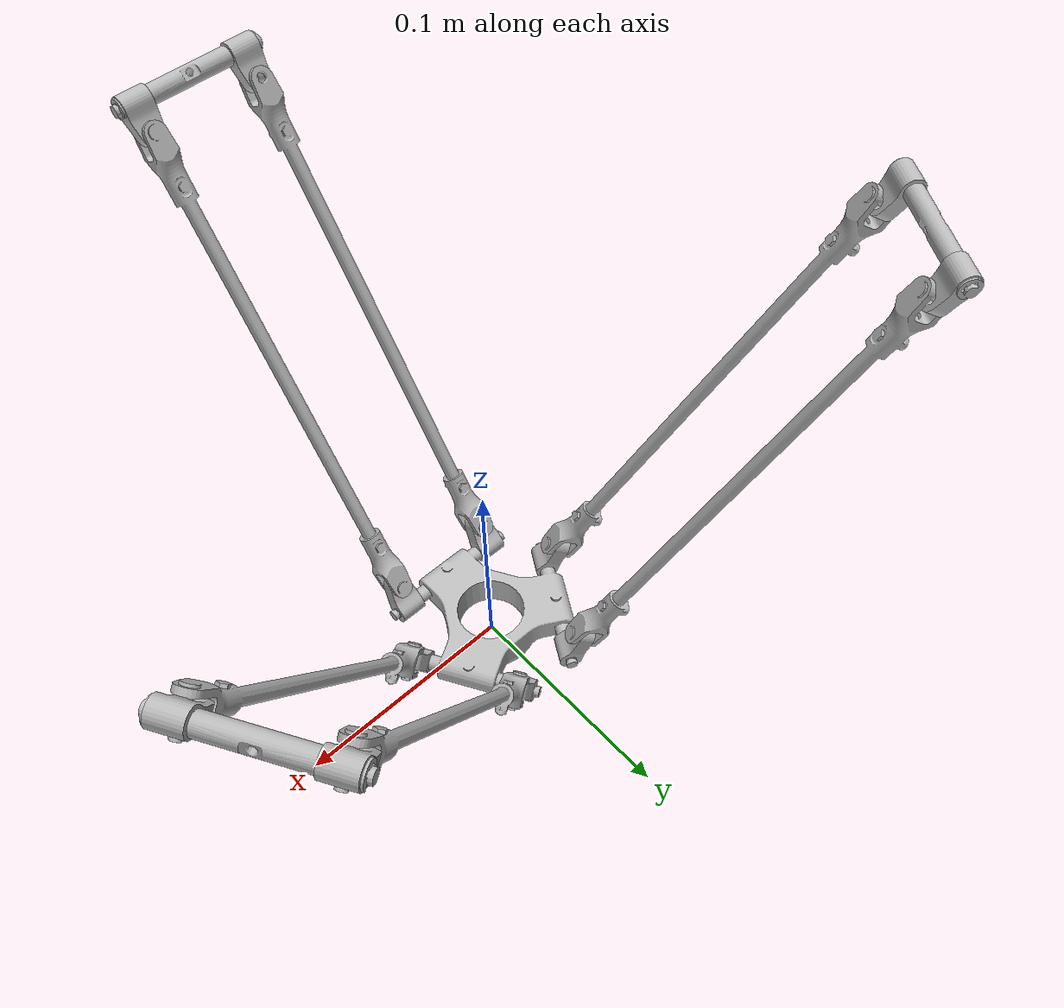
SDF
<sdf version='1.7'>
  <model name='DeltaManipulator_low'>
    <link name='low_base_link'>
      <inertial>
        <pose>0 -0 0.009282 0 -0 0</pose>
        <mass>0.0277053</mass>
        <inertia>
          <ixx>7.21837e-06</ixx>
          <ixy>8.45348e-15</ixy>
          <ixz>4.72158e-13</ixz>
          <iyy>7.21837e-06</iyy>
          <iyz>2.82195e-12</iyz>
          <izz>1.36261e-05</izz>
        </inertia>
      </inertial>
      <collision name='low_base_link_collision'>
        <pose>0 0 0 0 -0 0</pose>
        <geometry>
          <mesh>
            <scale>1 1 1</scale>
            <uri>model://DeltaManipulator_low/meshes/low_base_link.STL</uri>
          </mesh>
        </geometry>
      </collision>
      <visual name='low_base_link_visual'>
        <pose>0 0 0 0 -0 0</pose>
        <geometry>
          <mesh>
            <scale>1 1 1</scale>
            <uri>model://DeltaManipulator_low/meshes/low_base_link.STL</uri>
          </mesh>
        </geometry>
      </visual>
    </link>
    <joint name='low_base_link_joint_con131' type='revolute'>
      <pose relative_to='low_base_link'>-0.0324 -0.03 0.01 0 -0 0</pose>
      <parent>low_base_link</parent>
      <child>con131</child>
      <axis>
        <xyz>1 0 0</xyz>
        <limit>
          <effort>0</effort>
          <velocity>0</velocity>
          <lower>-1e+16</lower>
          <upper>1e+16</upper>
        </limit>
        <dynamics>
          <spring_reference>0</spring_reference>
          <spring_stiffness>0</spring_stiffness>
        </dynamics>
      </axis>
    </joint>
    <link name='con131'>
      <pose relative_to='low_base_link_joint_con131'>0 0 0 0 -0 0</pose>
      <inertial>
        <pose>0.0084 -0.002671 0.004067 0 -0 0</pose>
        <mass>0.00144663</mass>
        <inertia>
          <ixx>5.69218e-08</ixx>
          <ixy>2.55914e-21</ixy>
          <ixz>-4.05166e-21</ixz>
          <iyy>5.24618e-08</iyy>
          <iyz>1.79112e-08</iyz>
          <izz>3.69464e-08</izz>
        </inertia>
      </inertial>
      <collision name='con131_collision'>
        <pose>0 0 0 0 -0 0</pose>
        <geometry>
          <mesh>
            <scale>1 1 1</scale>
            <uri>model://DeltaManipulator_low/meshes/con131.STL</uri>
          </mesh>
        </geometry>
      </collision>
      <visual name='con131_visual'>
        <pose>0 0 0 0 -0 0</pose>
        <geometry>
          <mesh>
            <scale>1 1 1</scale>
            <uri>model://DeltaManipulator_low/meshes/con131.STL</uri>
          </mesh>
        </geometry>
      </visual>
    </link>
    <joint name='con111_joint_con121' type='revolute'>
      <pose relative_to='con131'>0.0084 -0.013859 0.005255 -1.5708 0.581034 -1.5708</pose>
      <parent>con131</parent>
      <child>con121</child>
      <axis>
        <xyz>-1 0 0</xyz>
        <limit>
          <lower>-1e+16</lower>
          <upper>1e+16</upper>
        </limit>
        <dynamics>
          <spring_reference>0</spring_reference>
          <spring_stiffness>0</spring_stiffness>
        </dynamics>
      </axis>
    </joint>
    <link name='con121'>
      <pose relative_to='con111_joint_con121'>0 0 0 0 -0 0</pose>
      <inertial>
        <pose>-0.008563 -0.105003 0 0 -0 0</pose>
        <mass>0.00783743</mass>
        <inertia>
          <ixx>1.33284e-05</ixx>
          <ixy>-9.91013e-13</ixy>
          <ixz>-1.33622e-13</ixz>
          <iyy>1.11815e-07</iyy>
          <iyz>1.13821e-13</iyz>
          <izz>1.33597e-05</izz>
        </inertia>
      </inertial>
      <collision name='con121_collision'>
        <pose>0 0 0 0 -0 0</pose>
        <geometry>
          <mesh>
            <scale>1 1 1</scale>
            <uri>model://DeltaManipulator_low/meshes/con121.STL</uri>
          </mesh>
        </geometry>
      </collision>
      <visual name='con121_visual'>
        <pose>0 0 0 0 -0 0</pose>
        <geometry>
          <mesh>
            <scale>1 1 1</scale>
            <uri>model://DeltaManipulator_low/meshes/con121.STL</uri>
          </mesh>
        </geometry>
      </visual>
    </link>
    <joint name='con121_joint_con111' type='revolute'>
      <pose relative_to='con121'>0 -0.216 0 0 -0 0</pose>
      <parent>con121</parent>
      <child>con111</child>
      <axis>
        <xyz>-1 0 0</xyz>
        <limit>
          <lower>-1e+16</lower>
          <upper>1e+16</upper>
        </limit>
        <dynamics>
          <spring_reference>0</spring_reference>
          <spring_stiffness>0</spring_stiffness>
        </dynamics>
      </axis>
    </joint>
    <link name='con111'>
      <pose relative_to='con121_joint_con111'>0 0 0 0 -0 0</pose>
      <inertial>
        <pose>-0.0087 -0.007134 0 0 -0 0</pose>
        <mass>0.00144663</mass>
        <inertia>
          <ixx>6.42231e-08</ixx>
          <ixy>-3.25636e-20</ixy>
          <ixz>3.8648e-23</ixz>
          <iyy>2.51851e-08</iyy>
          <iyz>-4.04036e-21</iyz>
          <izz>5.69218e-08</izz>
        </inertia>
      </inertial>
      <collision name='con111_collision'>
        <pose>0 0 0 0 -0 0</pose>
        <geometry>
          <mesh>
            <scale>1 1 1</scale>
            <uri>model://DeltaManipulator_low/meshes/con111.STL</uri>
          </mesh>
        </geometry>
      </collision>
      <visual name='con111_visual'>
        <pose>0 0 0 0 -0 0</pose>
        <geometry>
          <mesh>
            <scale>1 1 1</scale>
            <uri>model://DeltaManipulator_low/meshes/con111.STL</uri>
          </mesh>
        </geometry>
      </visual>
    </link>
    <joint name='con111_joint_con101' type='revolute'>
      <pose relative_to='con111'>-0.0087 -0.012 -0.0084 2.15183 -1.5708 0</pose>
      <parent>con111</parent>
      <child>con101</child>
      <axis>
        <xyz>-1 0 0</xyz>
        <limit>
          <lower>-1e+16</lower>
          <upper>1e+16</upper>
        </limit>
        <dynamics>
          <spring_reference>0</spring_reference>
          <spring_stiffness>0</spring_stiffness>
        </dynamics>
      </axis>
    </joint>
    <joint name='con112_joint_con101' type='revolute'>
      <pose relative_to='con112'>-0.0087 -0.012 -0.0084 2.15183 -1.5708 0</pose>
      <parent>con112</parent>
      <child>con101</child>
      <axis>
        <xyz>-1 0 0</xyz>
        <limit>
          <lower>-1e+16</lower>
          <upper>1e+16</upper>
        </limit>
        <dynamics>
          <spring_reference>0</spring_reference>
          <spring_stiffness>0</spring_stiffness>
        </dynamics>
      </axis>
    </joint>
    <link name='con101'>
      <pose relative_to='con111_joint_con101'>0 0 0 0 -0 0</pose>
      <inertial>
        <pose>0.0324 9e-06 1.5e-05 0 -0 0</pose>
        <mass>0.00233439</mass>
        <inertia>
          <ixx>1.61756e-08</ixx>
          <ixy>-7.50049e-21</ixy>
          <ixz>-7.13217e-23</ixz>
          <iyy>5.59999e-07</iyy>
          <iyz>-8.76657e-11</iyz>
          <izz>5.59708e-07</izz>
        </inertia>
      </inertial>
      <collision name='con101_collision'>
        <pose>0 0 0 0 -0 0</pose>
        <geometry>
          <mesh>
            <scale>1 1 1</scale>
            <uri>model://DeltaManipulator_low/meshes/con101.STL</uri>
          </mesh>
        </geometry>
      </collision>
      <visual name='con101_visual'>
        <pose>0 0 0 0 -0 0</pose>
        <geometry>
          <mesh>
            <scale>1 1 1</scale>
            <uri>model://DeltaManipulator_low/meshes/con101.STL</uri>
          </mesh>
        </geometry>
      </visual>
    </link>
    <joint name='low_base_link_joint_con132' type='revolute'>
      <pose relative_to='low_base_link'>0.0324 -0.03 0.01 0 -0 0</pose>
      <parent>low_base_link</parent>
      <child>con132</child>
      <axis>
        <xyz>1 0 0</xyz>
        <limit>
          <effort>0</effort>
          <velocity>0</velocity>
          <lower>-1e+16</lower>
          <upper>1e+16</upper>
        </limit>
        <dynamics>
          <spring_reference>0</spring_reference>
          <spring_stiffness>0</spring_stiffness>
        </dynamics>
      </axis>
    </joint>
    <link name='con132'>
      <pose relative_to='low_base_link_joint_con132'>0 0 0 0 -0 0</pose>
      <inertial>
        <pose>-0.0084 -0.002671 0.004067 0 -0 0</pose>
        <mass>0.00144663</mass>
        <inertia>
          <ixx>5.69218e-08</ixx>
          <ixy>2.56603e-21</ixy>
          <ixz>-4.05505e-21</ixz>
          <iyy>5.24618e-08</iyy>
          <iyz>1.79112e-08</iyz>
          <izz>3.69464e-08</izz>
        </inertia>
      </inertial>
      <collision name='con132_collision'>
        <pose>0 0 0 0 -0 0</pose>
        <geometry>
          <mesh>
            <scale>1 1 1</scale>
            <uri>model://DeltaManipulator_low/meshes/con132.STL</uri>
          </mesh>
        </geometry>
      </collision>
      <visual name='con132_visual'>
        <pose>0 0 0 0 -0 0</pose>
        <geometry>
          <mesh>
            <scale>1 1 1</scale>
            <uri>model://DeltaManipulator_low/meshes/con132.STL</uri>
          </mesh>
        </geometry>
      </visual>
    </link>
    <joint name='con112_joint_con122' type='revolute'>
      <pose relative_to='con132'>-0.0084 -0.013859 0.005255 -1.5708 0.581034 -1.5708</pose>
      <parent>con132</parent>
      <child>con122</child>
      <axis>
        <xyz>-1 0 0</xyz>
        <limit>
          <lower>-1e+16</lower>
          <upper>1e+16</upper>
        </limit>
        <dynamics>
          <spring_reference>0</spring_reference>
          <spring_stiffness>0</spring_stiffness>
        </dynamics>
      </axis>
    </joint>
    <link name='con122'>
      <pose relative_to='con112_joint_con122'>0 0 0 0 -0 0</pose>
      <inertial>
        <pose>-0.008567 -0.107998 0 0 -0 0</pose>
        <mass>0.00805476</mass>
        <inertia>
          <ixx>1.33289e-05</ixx>
          <ixy>-9.91013e-13</ixy>
          <ixz>-1.33622e-13</ixz>
          <iyy>1.1727e-07</iyy>
          <iyz>1.13822e-13</iyz>
          <izz>1.33651e-05</izz>
        </inertia>
      </inertial>
      <collision name='con122_collision'>
        <pose>0 0 0 0 -0 0</pose>
        <geometry>
          <mesh>
            <scale>1 1 1</scale>
            <uri>model://DeltaManipulator_low/meshes/con122.STL</uri>
          </mesh>
        </geometry>
      </collision>
      <visual name='con122_visual'>
        <pose>0 0 0 0 -0 0</pose>
        <geometry>
          <mesh>
            <scale>1 1 1</scale>
            <uri>model://DeltaManipulator_low/meshes/con122.STL</uri>
          </mesh>
        </geometry>
      </visual>
    </link>
    <joint name='con122_joint_con112' type='revolute'>
      <pose relative_to='con122'>0 -0.216 0 0 -0 0</pose>
      <parent>con122</parent>
      <child>con112</child>
      <axis>
        <xyz>-1 0 0</xyz>
        <limit>
          <lower>-1e+16</lower>
          <upper>1e+16</upper>
        </limit>
        <dynamics>
          <spring_reference>0</spring_reference>
          <spring_stiffness>0</spring_stiffness>
        </dynamics>
      </axis>
    </joint>
    <link name='con112'>
      <pose relative_to='con122_joint_con112'>0 0 0 0 -0 0</pose>
      <inertial>
        <pose>-0.0087 -0.007134 0 0 -0 0</pose>
        <mass>0.00144663</mass>
        <inertia>
          <ixx>6.42231e-08</ixx>
          <ixy>-3.26223e-20</ixy>
          <ixz>3.04521e-23</ixz>
          <iyy>2.51851e-08</iyy>
          <iyz>-4.03079e-21</iyz>
          <izz>5.69218e-08</izz>
        </inertia>
      </inertial>
      <collision name='con112_collision'>
        <pose>0 0 0 0 -0 0</pose>
        <geometry>
          <mesh>
            <scale>1 1 1</scale>
            <uri>model://DeltaManipulator_low/meshes/con112.STL</uri>
          </mesh>
        </geometry>
      </collision>
      <visual name='con112_visual'>
        <pose>0 0 0 0 -0 0</pose>
        <geometry>
          <mesh>
            <scale>1 1 1</scale>
            <uri>model://DeltaManipulator_low/meshes/con112.STL</uri>
          </mesh>
        </geometry>
      </visual>
    </link>
    <joint name='low_base_link_joint_con231' type='revolute'>
      <pose relative_to='low_base_link'>0.042181 -0.013059 0.01 0 0 -1.0472</pose>
      <parent>low_base_link</parent>
      <child>con231</child>
      <axis>
        <xyz>-1 0 0</xyz>
        <limit>
          <effort>0</effort>
          <velocity>0</velocity>
          <lower>-1e+16</lower>
          <upper>1e+16</upper>
        </limit>
        <dynamics>
          <spring_reference>0</spring_reference>
          <spring_stiffness>0</spring_stiffness>
        </dynamics>
      </axis>
    </joint>
    <link name='con231'>
      <pose relative_to='low_base_link_joint_con231'>0 0 0 0 -0 0</pose>
      <inertial>
        <pose>-0.0084 0.002671 0.004067 0 -0 0</pose>
        <mass>0.00144663</mass>
        <inertia>
          <ixx>5.69218e-08</ixx>
          <ixy>8.54296e-19</ixy>
          <ixz>2.07455e-18</ixz>
          <iyy>5.24618e-08</iyy>
          <iyz>-1.79112e-08</iyz>
          <izz>3.69464e-08</izz>
        </inertia>
      </inertial>
      <collision name='con231_collision'>
        <pose>0 0 0 0 -0 0</pose>
        <geometry>
          <mesh>
            <scale>1 1 1</scale>
            <uri>model://DeltaManipulator_low/meshes/con231.STL</uri>
          </mesh>
        </geometry>
      </collision>
      <visual name='con231_visual'>
        <pose>0 0 0 0 -0 0</pose>
        <geometry>
          <mesh>
            <scale>1 1 1</scale>
            <uri>model://DeltaManipulator_low/meshes/con231.STL</uri>
          </mesh>
        </geometry>
      </visual>
    </link>
    <joint name='con211_joint_con221' type='revolute'>
      <pose relative_to='con231'>-0.0084 0.013859 0.005255 0.306889 0.581034 1.5708</pose>
      <parent>con231</parent>
      <child>con221</child>
      <axis>
        <xyz>-1 0 0</xyz>
        <limit>
          <lower>-1e+16</lower>
          <upper>1e+16</upper>
        </limit>
        <dynamics>
          <spring_reference>0</spring_reference>
          <spring_stiffness>0</spring_stiffness>
        </dynamics>
      </axis>
    </joint>
    <link name='con221'>
      <pose relative_to='con211_joint_con221'>0 0 0 0 -0 0</pose>
      <inertial>
        <pose>-0.008567 0.032625 0.102952 0 -0 0</pose>
        <mass>0.00805476</mass>
        <inertia>
          <ixx>1.33289e-05</ixx>
          <ixy>1.72633e-13</ixy>
          <ixz>9.86337e-13</ixz>
          <iyy>1.21561e-05</iyy>
          <iyz>-3.81512e-06</iyz>
          <izz>1.32629e-06</izz>
        </inertia>
      </inertial>
      <collision name='con221_collision'>
        <pose>0 0 0 0 -0 0</pose>
        <geometry>
          <mesh>
            <scale>1 1 1</scale>
            <uri>model://DeltaManipulator_low/meshes/con221.STL</uri>
          </mesh>
        </geometry>
      </collision>
      <visual name='con221_visual'>
        <pose>0 0 0 0 -0 0</pose>
        <geometry>
          <mesh>
            <scale>1 1 1</scale>
            <uri>model://DeltaManipulator_low/meshes/con221.STL</uri>
          </mesh>
        </geometry>
      </visual>
    </link>
    <joint name='con221_joint_con211' type='revolute'>
      <pose relative_to='con221'>0 0.065252 0.205908 0 -0 0</pose>
      <parent>con221</parent>
      <child>con211</child>
      <axis>
        <xyz>-1 0 0</xyz>
        <limit>
          <lower>-1e+16</lower>
          <upper>1e+16</upper>
        </limit>
        <dynamics>
          <spring_reference>0</spring_reference>
          <spring_stiffness>0</spring_stiffness>
        </dynamics>
      </axis>
    </joint>
    <link name='con211'>
      <pose relative_to='con221_joint_con211'>0 0 0 0 -0 0</pose>
      <inertial>
        <pose>-0.0087 0.002155 0.006801 0 -0 0</pose>
        <mass>0.00144663</mass>
        <inertia>
          <ixx>6.42231e-08</ixx>
          <ixy>8.57311e-19</ixy>
          <ixz>1.29525e-18</ixz>
          <iyy>5.40255e-08</iyy>
          <iyz>-9.13954e-09</iyz>
          <izz>2.80814e-08</izz>
        </inertia>
      </inertial>
      <collision name='con211_collision'>
        <pose>0 0 0 0 -0 0</pose>
        <geometry>
          <mesh>
            <scale>1 1 1</scale>
            <uri>model://DeltaManipulator_low/meshes/con211.STL</uri>
          </mesh>
        </geometry>
      </collision>
      <visual name='con211_visual'>
        <pose>0 0 0 0 -0 0</pose>
        <geometry>
          <mesh>
            <scale>1 1 1</scale>
            <uri>model://DeltaManipulator_low/meshes/con211.STL</uri>
          </mesh>
        </geometry>
      </visual>
    </link>
    <joint name='con211_joint_con201' type='revolute'>
      <pose relative_to='con211'>-0.0087 -0.004382 0.013977 2.56056 0.306889 1.5708</pose>
      <parent>con211</parent>
      <child>con201</child>
      <axis>
        <xyz>-1 0 0</xyz>
        <limit>
          <lower>-1e+16</lower>
          <upper>1e+16</upper>
        </limit>
        <dynamics>
          <spring_reference>0</spring_reference>
          <spring_stiffness>0</spring_stiffness>
        </dynamics>
      </axis>
    </joint>
    <joint name='con212_joint_con201' type='revolute'>
      <pose relative_to='con212'>-0.0087 -0.004382 0.013977 2.56056 0.306889 1.5708</pose>
      <parent>con212</parent>
      <child>con201</child>
      <axis>
        <xyz>-1 0 0</xyz>
        <limit>
          <lower>-1e+16</lower>
          <upper>1e+16</upper>
        </limit>
        <dynamics>
          <spring_reference>0</spring_reference>
          <spring_stiffness>0</spring_stiffness>
        </dynamics>
      </axis>
    </joint>
    <link name='con201'>
      <pose relative_to='con211_joint_con201'>0 0 0 0 -0 0</pose>
      <inertial>
        <pose>0.0324 -9e-06 -1.5e-05 0 -0 0</pose>
        <mass>0.00233439</mass>
        <inertia>
          <ixx>1.61756e-08</ixx>
          <ixy>4.7358e-22</ixy>
          <ixz>-4.56895e-22</ixz>
          <iyy>5.59999e-07</iyy>
          <iyz>-8.76657e-11</iyz>
          <izz>5.59708e-07</izz>
        </inertia>
      </inertial>
      <collision name='con201_collision'>
        <pose>0 0 0 0 -0 0</pose>
        <geometry>
          <mesh>
            <scale>1 1 1</scale>
            <uri>model://DeltaManipulator_low/meshes/con201.STL</uri>
          </mesh>
        </geometry>
      </collision>
      <visual name='con201_visual'>
        <pose>0 0 0 0 -0 0</pose>
        <geometry>
          <mesh>
            <scale>1 1 1</scale>
            <uri>model://DeltaManipulator_low/meshes/con201.STL</uri>
          </mesh>
        </geometry>
      </visual>
    </link>
    <joint name='low_base_link_joint_con232' type='revolute'>
      <pose relative_to='low_base_link'>0.009781 0.043059 0.01 3.14159 -0 2.0944</pose>
      <parent>low_base_link</parent>
      <child>con232</child>
      <axis>
        <xyz>1 0 0</xyz>
        <limit>
          <effort>0</effort>
          <velocity>0</velocity>
          <lower>-1e+16</lower>
          <upper>1e+16</upper>
        </limit>
        <dynamics>
          <spring_reference>0</spring_reference>
          <spring_stiffness>0</spring_stiffness>
        </dynamics>
      </axis>
    </joint>
    <link name='con232'>
      <pose relative_to='low_base_link_joint_con232'>0 0 0 0 -0 0</pose>
      <inertial>
        <pose>-0.0084 0.002671 -0.004067 0 -0 0</pose>
        <mass>0.00144663</mass>
        <inertia>
          <ixx>5.69218e-08</ixx>
          <ixy>-8.55179e-19</ixy>
          <ixz>2.07811e-18</ixz>
          <iyy>5.24618e-08</iyy>
          <iyz>1.79112e-08</iyz>
          <izz>3.69464e-08</izz>
        </inertia>
      </inertial>
      <collision name='con232_collision'>
        <pose>0 0 0 0 -0 0</pose>
        <geometry>
          <mesh>
            <scale>1 1 1</scale>
            <uri>model://DeltaManipulator_low/meshes/con232.STL</uri>
          </mesh>
        </geometry>
      </collision>
      <visual name='con232_visual'>
        <pose>0 0 0 0 -0 0</pose>
        <geometry>
          <mesh>
            <scale>1 1 1</scale>
            <uri>model://DeltaManipulator_low/meshes/con232.STL</uri>
          </mesh>
        </geometry>
      </visual>
    </link>
    <joint name='con212_joint_con222' type='revolute'>
      <pose relative_to='con232'>-0.0084 0.013859 -0.005255 -2.8347 -0.581034 1.5708</pose>
      <parent>con232</parent>
      <child>con222</child>
      <axis>
        <xyz>-1 0 0</xyz>
        <limit>
          <lower>-1e+16</lower>
          <upper>1e+16</upper>
        </limit>
        <dynamics>
          <spring_reference>0</spring_reference>
          <spring_stiffness>0</spring_stiffness>
        </dynamics>
      </axis>
    </joint>
    <link name='con222'>
      <pose relative_to='con212_joint_con222'>0 0 0 0 -0 0</pose>
      <inertial>
        <pose>-0.008567 0.032625 0.102952 0 -0 0</pose>
        <mass>0.00805476</mass>
        <inertia>
          <ixx>1.33289e-05</ixx>
          <ixy>1.72633e-13</ixy>
          <ixz>9.86337e-13</ixz>
          <iyy>1.21561e-05</iyy>
          <iyz>-3.81512e-06</iyz>
          <izz>1.32629e-06</izz>
        </inertia>
      </inertial>
      <collision name='con222_collision'>
        <pose>0 0 0 0 -0 0</pose>
        <geometry>
          <mesh>
            <scale>1 1 1</scale>
            <uri>model://DeltaManipulator_low/meshes/con222.STL</uri>
          </mesh>
        </geometry>
      </collision>
      <visual name='con222_visual'>
        <pose>0 0 0 0 -0 0</pose>
        <geometry>
          <mesh>
            <scale>1 1 1</scale>
            <uri>model://DeltaManipulator_low/meshes/con222.STL</uri>
          </mesh>
        </geometry>
      </visual>
    </link>
    <joint name='con222_joint_con212' type='revolute'>
      <pose relative_to='con222'>0 0.065252 0.205908 0 -0 0</pose>
      <parent>con222</parent>
      <child>con212</child>
      <axis>
        <xyz>-1 0 0</xyz>
        <limit>
          <lower>-1e+16</lower>
          <upper>1e+16</upper>
        </limit>
        <dynamics>
          <spring_reference>0</spring_reference>
          <spring_stiffness>0</spring_stiffness>
        </dynamics>
      </axis>
    </joint>
    <link name='con212'>
      <pose relative_to='con222_joint_con212'>0 0 0 0 -0 0</pose>
      <inertial>
        <pose>-0.0087 0.002155 0.006801 0 -0 0</pose>
        <mass>0.00144663</mass>
        <inertia>
          <ixx>6.42231e-08</ixx>
          <ixy>8.57311e-19</ixy>
          <ixz>1.29527e-18</ixz>
          <iyy>5.40255e-08</iyy>
          <iyz>-9.13954e-09</iyz>
          <izz>2.80814e-08</izz>
        </inertia>
      </inertial>
      <collision name='con212_collision'>
        <pose>0 0 0 0 -0 0</pose>
        <geometry>
          <mesh>
            <scale>1 1 1</scale>
            <uri>model://DeltaManipulator_low/meshes/con212.STL</uri>
          </mesh>
        </geometry>
      </collision>
      <visual name='con212_visual'>
        <pose>0 0 0 0 -0 0</pose>
        <geometry>
          <mesh>
            <scale>1 1 1</scale>
            <uri>model://DeltaManipulator_low/meshes/con212.STL</uri>
          </mesh>
        </geometry>
      </visual>
    </link>
    <joint name='low_base_link_joint_con331' type='revolute'>
      <pose relative_to='low_base_link'>-0.009781 0.043059 0.01 -3.14159 -0 -2.0944</pose>
      <parent>low_base_link</parent>
      <child>con331</child>
      <axis>
        <xyz>1 0 0</xyz>
        <limit>
          <effort>0</effort>
          <velocity>0</velocity>
          <lower>-1e+16</lower>
          <upper>1e+16</upper>
        </limit>
        <dynamics>
          <spring_reference>0</spring_reference>
          <spring_stiffness>0</spring_stiffness>
        </dynamics>
      </axis>
    </joint>
    <link name='con331'>
      <pose relative_to='low_base_link_joint_con331'>0 0 0 0 -0 0</pose>
      <inertial>
        <pose>0.0084 0.002671 -0.004067 0 -0 0</pose>
        <mass>0.00144663</mass>
        <inertia>
          <ixx>5.69218e-08</ixx>
          <ixy>8.49976e-19</ixy>
          <ixz>-2.07046e-18</ixz>
          <iyy>5.24618e-08</iyy>
          <iyz>1.79112e-08</iyz>
          <izz>3.69464e-08</izz>
        </inertia>
      </inertial>
      <collision name='con331_collision'>
        <pose>0 0 0 0 -0 0</pose>
        <geometry>
          <mesh>
            <scale>1 1 1</scale>
            <uri>model://DeltaManipulator_low/meshes/con331.STL</uri>
          </mesh>
        </geometry>
      </collision>
      <visual name='con331_visual'>
        <pose>0 0 0 0 -0 0</pose>
        <geometry>
          <mesh>
            <scale>1 1 1</scale>
            <uri>model://DeltaManipulator_low/meshes/con331.STL</uri>
          </mesh>
        </geometry>
      </visual>
    </link>
    <joint name='con311_joint_con321' type='revolute'>
      <pose relative_to='con331'>0.0084 0.013859 -0.005255 -0.306889 -0.581034 1.5708</pose>
      <parent>con331</parent>
      <child>con321</child>
      <axis>
        <xyz>-1 0 0</xyz>
        <limit>
          <lower>-1e+16</lower>
          <upper>1e+16</upper>
        </limit>
        <dynamics>
          <spring_reference>0</spring_reference>
          <spring_stiffness>0</spring_stiffness>
        </dynamics>
      </axis>
    </joint>
    <link name='con321'>
      <pose relative_to='con311_joint_con321'>0 0 0 0 -0 0</pose>
      <inertial>
        <pose>-0.008567 0.032625 -0.102952 0 -0 0</pose>
        <mass>0.00805476</mass>
        <inertia>
          <ixx>1.33289e-05</ixx>
          <ixy>4.27371e-13</ixy>
          <ixz>-9.05571e-13</ixz>
          <iyy>1.21561e-05</iyy>
          <iyz>3.81512e-06</iyz>
          <izz>1.32629e-06</izz>
        </inertia>
      </inertial>
      <collision name='con321_collision'>
        <pose>0 0 0 0 -0 0</pose>
        <geometry>
          <mesh>
            <scale>1 1 1</scale>
            <uri>model://DeltaManipulator_low/meshes/con321.STL</uri>
          </mesh>
        </geometry>
      </collision>
      <visual name='con321_visual'>
        <pose>0 0 0 0 -0 0</pose>
        <geometry>
          <mesh>
            <scale>1 1 1</scale>
            <uri>model://DeltaManipulator_low/meshes/con321.STL</uri>
          </mesh>
        </geometry>
      </visual>
    </link>
    <joint name='con321_joint_311' type='revolute'>
      <pose relative_to='con321'>0 0.065252 -0.205908 0 -0 0</pose>
      <parent>con321</parent>
      <child>con311</child>
      <axis>
        <xyz>-1 0 0</xyz>
        <limit>
          <lower>-1e+16</lower>
          <upper>1e+16</upper>
        </limit>
        <dynamics>
          <spring_reference>0</spring_reference>
          <spring_stiffness>0</spring_stiffness>
        </dynamics>
      </axis>
    </joint>
    <link name='con311'>
      <pose relative_to='con321_joint_311'>0 0 0 0 -0 0</pose>
      <inertial>
        <pose>-0.0087 0.002155 -0.006801 0 -0 0</pose>
        <mass>0.00144663</mass>
        <inertia>
          <ixx>6.42231e-08</ixx>
          <ixy>8.57144e-19</ixy>
          <ixz>-1.29534e-18</ixz>
          <iyy>5.40255e-08</iyy>
          <iyz>9.13954e-09</iyz>
          <izz>2.80814e-08</izz>
        </inertia>
      </inertial>
      <collision name='con311_collision'>
        <pose>0 0 0 0 -0 0</pose>
        <geometry>
          <mesh>
            <scale>1 1 1</scale>
            <uri>model://DeltaManipulator_low/meshes/con311.STL</uri>
          </mesh>
        </geometry>
      </collision>
      <visual name='con311_visual'>
        <pose>0 0 0 0 -0 0</pose>
        <geometry>
          <mesh>
            <scale>1 1 1</scale>
            <uri>model://DeltaManipulator_low/meshes/con311.STL</uri>
          </mesh>
        </geometry>
      </visual>
    </link>
    <joint name='con311_joint_con301' type='revolute'>
      <pose relative_to='con311'>-0.0087 0.011633 -0.008902 -0.581034 0.306889 -1.5708</pose>
      <parent>con311</parent>
      <child>con301</child>
      <axis>
        <xyz>-1 0 0</xyz>
        <limit>
          <lower>-1e+16</lower>
          <upper>1e+16</upper>
        </limit>
        <dynamics>
          <spring_reference>0</spring_reference>
          <spring_stiffness>0</spring_stiffness>
        </dynamics>
      </axis>
    </joint>
    <joint name='con312_joint_con301' type='revolute'>
      <pose relative_to='con312'>-0.0087 0.011633 -0.008902 -0.581034 0.306889 -1.5708</pose>
      <parent>con312</parent>
      <child>con301</child>
      <axis>
        <xyz>-1 0 0</xyz>
        <limit>
          <lower>-1e+16</lower>
          <upper>1e+16</upper>
        </limit>
        <dynamics>
          <spring_reference>0</spring_reference>
          <spring_stiffness>0</spring_stiffness>
        </dynamics>
      </axis>
    </joint>
    <link name='con301'>
      <pose relative_to='con311_joint_con301'>0 0 0 0 -0 0</pose>
      <inertial>
        <pose>0.0324 -9e-06 -1.5e-05 0 -0 0</pose>
        <mass>0.00233439</mass>
        <inertia>
          <ixx>1.61756e-08</ixx>
          <ixy>-4.07391e-22</ixy>
          <ixz>4.17053e-23</ixz>
          <iyy>5.59999e-07</iyy>
          <iyz>-8.76657e-11</iyz>
          <izz>5.59708e-07</izz>
        </inertia>
      </inertial>
      <collision name='con301_collision'>
        <pose>0 0 0 0 -0 0</pose>
        <geometry>
          <mesh>
            <scale>1 1 1</scale>
            <uri>model://DeltaManipulator_low/meshes/con301.STL</uri>
          </mesh>
        </geometry>
      </collision>
      <visual name='con301_visual'>
        <pose>0 0 0 0 -0 0</pose>
        <geometry>
          <mesh>
            <scale>1 1 1</scale>
            <uri>model://DeltaManipulator_low/meshes/con301.STL</uri>
          </mesh>
        </geometry>
      </visual>
    </link>
    <joint name='low_base_link_joint_con332' type='revolute'>
      <pose relative_to='low_base_link'>-0.042181 -0.013059 0.01 0 -0 1.0472</pose>
      <parent>low_base_link</parent>
      <child>con332</child>
      <axis>
        <xyz>-1 0 0</xyz>
        <limit>
          <effort>0</effort>
          <velocity>0</velocity>
          <lower>-1e+16</lower>
          <upper>1e+16</upper>
        </limit>
        <dynamics>
          <spring_reference>0</spring_reference>
          <spring_stiffness>0</spring_stiffness>
        </dynamics>
      </axis>
    </joint>
    <link name='con332'>
      <pose relative_to='low_base_link_joint_con332'>0 0 0 0 -0 0</pose>
      <inertial>
        <pose>0.0084 0.002671 0.004067 0 -0 0</pose>
        <mass>0.00144663</mass>
        <inertia>
          <ixx>5.69218e-08</ixx>
          <ixy>-8.49993e-19</ixy>
          <ixz>-2.07046e-18</ixz>
          <iyy>5.24618e-08</iyy>
          <iyz>-1.79112e-08</iyz>
          <izz>3.69464e-08</izz>
        </inertia>
      </inertial>
      <collision name='con332_collision'>
        <pose>0 0 0 0 -0 0</pose>
        <geometry>
          <mesh>
            <scale>1 1 1</scale>
            <uri>model://DeltaManipulator_low/meshes/con332.STL</uri>
          </mesh>
        </geometry>
      </collision>
      <visual name='con332_visual'>
        <pose>0 0 0 0 -0 0</pose>
        <geometry>
          <mesh>
            <scale>1 1 1</scale>
            <uri>model://DeltaManipulator_low/meshes/con332.STL</uri>
          </mesh>
        </geometry>
      </visual>
    </link>
    <joint name='con312_joint_con322' type='revolute'>
      <pose relative_to='con332'>0.0084 0.013859 0.005255 2.8347 0.581034 1.5708</pose>
      <parent>con332</parent>
      <child>con322</child>
      <axis>
        <xyz>-1 0 0</xyz>
        <limit>
          <lower>-1e+16</lower>
          <upper>1e+16</upper>
        </limit>
        <dynamics>
          <spring_reference>0</spring_reference>
          <spring_stiffness>0</spring_stiffness>
        </dynamics>
      </axis>
    </joint>
    <link name='con322'>
      <pose relative_to='con312_joint_con322'>0 0 0 0 -0 0</pose>
      <inertial>
        <pose>-0.008567 0.032625 -0.102952 0 -0 0</pose>
        <mass>0.00805476</mass>
        <inertia>
          <ixx>1.33289e-05</ixx>
          <ixy>4.27371e-13</ixy>
          <ixz>-9.05571e-13</ixz>
          <iyy>1.21561e-05</iyy>
          <iyz>3.81512e-06</iyz>
          <izz>1.32629e-06</izz>
        </inertia>
      </inertial>
      <collision name='con322_collision'>
        <pose>0 0 0 0 -0 0</pose>
        <geometry>
          <mesh>
            <scale>1 1 1</scale>
            <uri>model://DeltaManipulator_low/meshes/con322.STL</uri>
          </mesh>
        </geometry>
      </collision>
      <visual name='con322_visual'>
        <pose>0 0 0 0 -0 0</pose>
        <geometry>
          <mesh>
            <scale>1 1 1</scale>
            <uri>model://DeltaManipulator_low/meshes/con322.STL</uri>
          </mesh>
        </geometry>
      </visual>
    </link>
    <joint name='con322_joint_con312' type='revolute'>
      <pose relative_to='con322'>0 0.065252 -0.205908 0 -0 0</pose>
      <parent>con322</parent>
      <child>con312</child>
      <axis>
        <xyz>-1 0 0</xyz>
        <limit>
          <lower>-1e+16</lower>
          <upper>1e+16</upper>
        </limit>
        <dynamics>
          <spring_reference>0</spring_reference>
          <spring_stiffness>0</spring_stiffness>
        </dynamics>
      </axis>
    </joint>
    <link name='con312'>
      <pose relative_to='con322_joint_con312'>0 0 0 0 -0 0</pose>
      <inertial>
        <pose>-0.0087 0.002155 -0.006801 0 -0 0</pose>
        <mass>0.00144663</mass>
        <inertia>
          <ixx>6.42231e-08</ixx>
          <ixy>8.57133e-19</ixy>
          <ixz>-1.29537e-18</ixz>
          <iyy>5.40255e-08</iyy>
          <iyz>9.13954e-09</iyz>
          <izz>2.80814e-08</izz>
        </inertia>
      </inertial>
      <collision name='con312_collision'>
        <pose>0 0 0 0 -0 0</pose>
        <geometry>
          <mesh>
            <scale>1 1 1</scale>
            <uri>model://DeltaManipulator_low/meshes/con312.STL</uri>
          </mesh>
        </geometry>
      </collision>
      <visual name='con312_visual'>
        <pose>0 0 0 0 -0 0</pose>
        <geometry>
          <mesh>
            <scale>1 1 1</scale>
            <uri>model://DeltaManipulator_low/meshes/con312.STL</uri>
          </mesh>
        </geometry>
      </visual>
    </link>
  </model>
</sdf>
